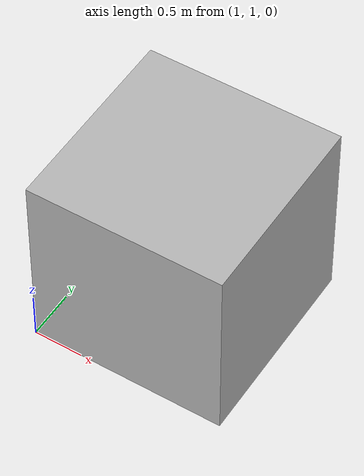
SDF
<?xml version="1.0" ?>
<sdf version="1.4">

	<model name="big_cube">
	  <pose>2 2 1 0 0 0</pose>
	  <static>true</static>
		<link name="link">
		  <inertial>
			<mass>1.0</mass>
			<inertia>
			  <ixx>1.0</ixx>
			  <ixy>0.0</ixy>
			  <ixz>0.0</ixz>
			  <iyy>1.0</iyy>
			  <iyz>0.0</iyz>
			  <izz>1.0</izz>
			</inertia>
		  </inertial>
		  <collision name="collision">
			<geometry>
			  <box>
				<size>2 2 2</size>
			  </box>
			</geometry>
		  </collision>
		  <visual name="visual">
			<geometry>
			  <box>
				<size>2 2 2</size>
			  </box>
			</geometry>
		  </visual>
		</link>

	  </model>

</sdf>
